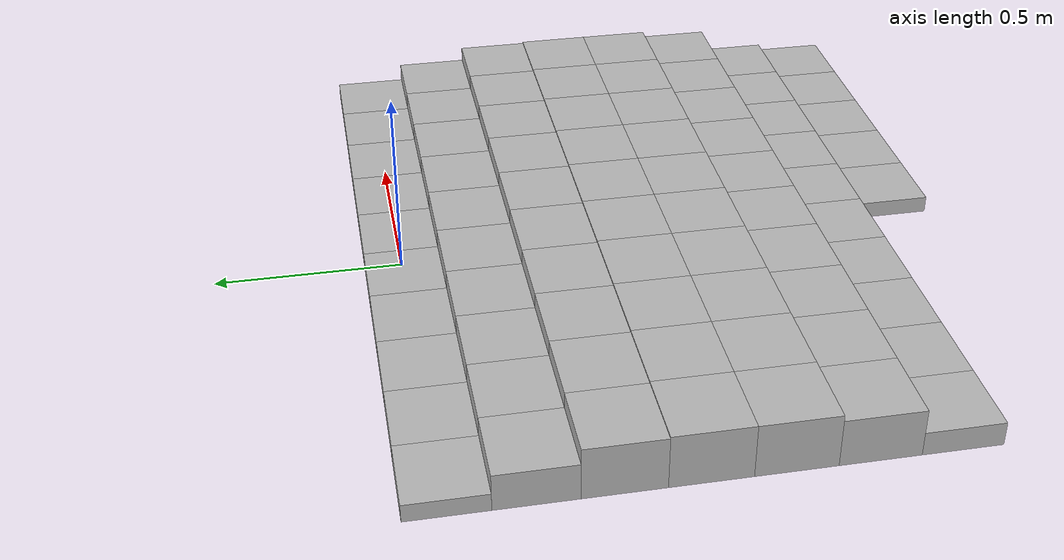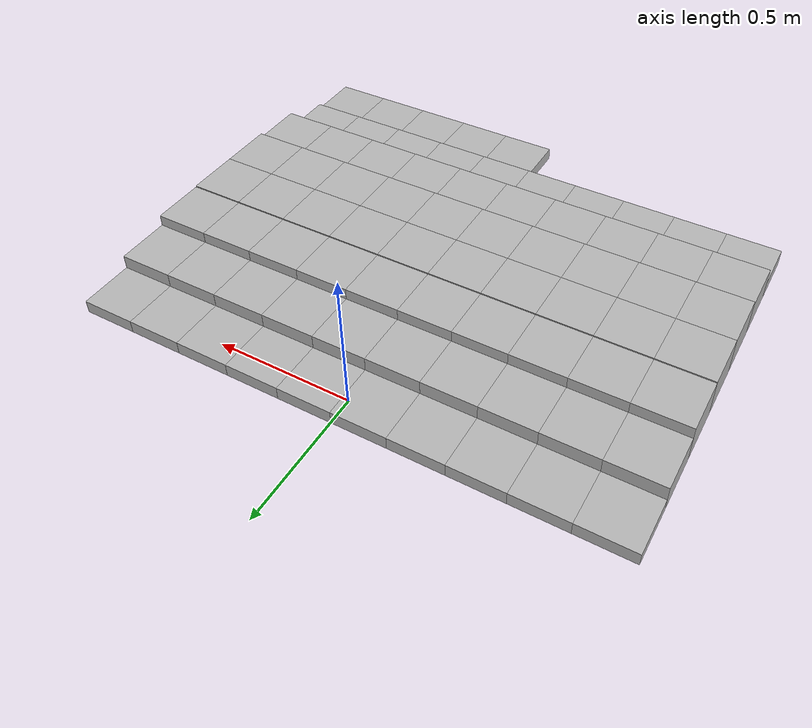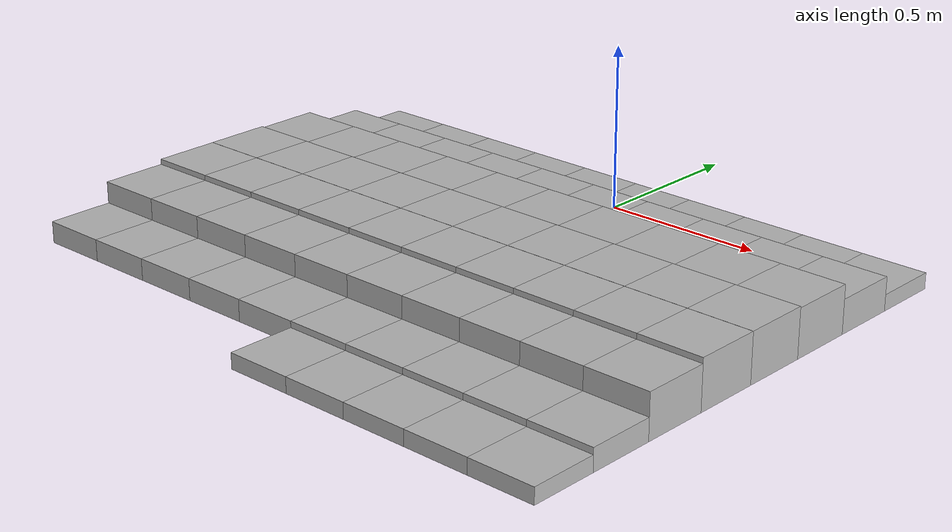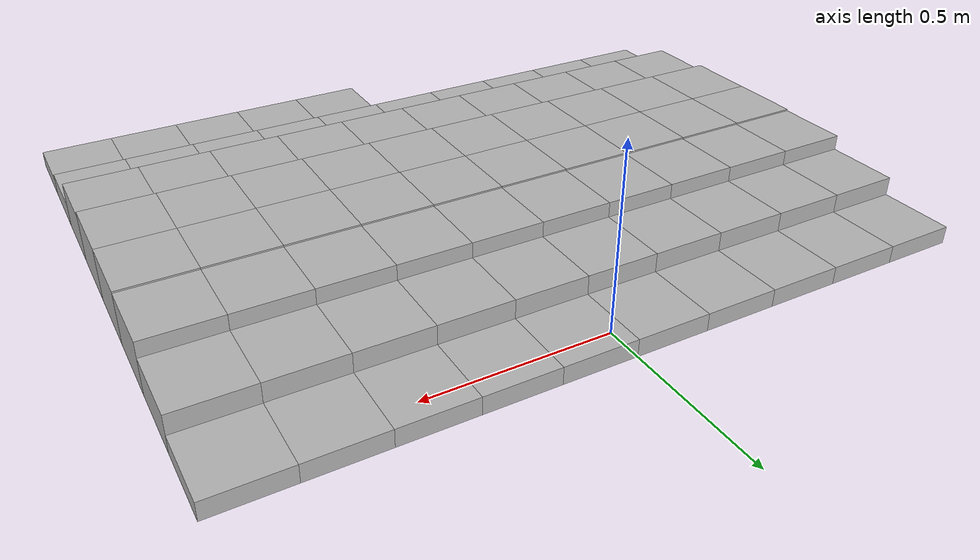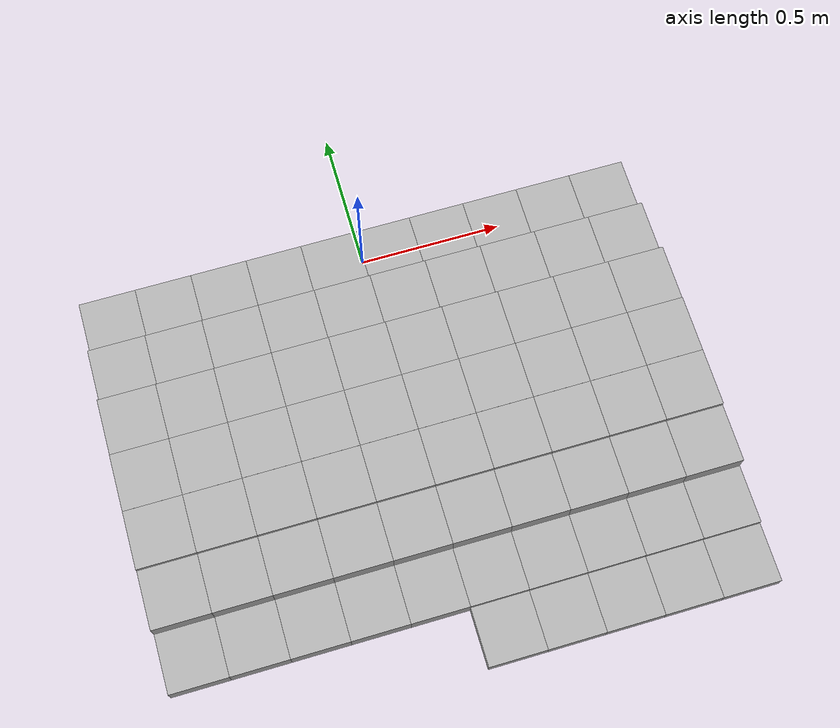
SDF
<sdf version="1.6">
 <model name="Terrain">
  <static>true</static>
  <link name="box_0_0">
   <pose>-0.9 0.0 0.0239171255452 0 0 0</pose>
   <inertial>
    <mass>1.0</mass>
    <inertia><ixx>0.0</ixx><ixy>0.0</ixy><ixz>0.0</ixz><iyy>0.0</iyy><iyz>0.0</iyz><izz>0.0</izz></inertia>
   </inertial>
   <collision name="collision"><geometry><box><size>0.2 0.2 0.0478342510903</size></box></geometry></collision>
   <visual name="visual"><geometry><box><size>0.2 0.2 0.0478342510903</size></box></geometry></visual>
  </link>
  <link name="box_0_1">
   <pose>-0.7 0.0 0.0239171255452 0 0 0</pose>
   <inertial>
    <mass>1.0</mass>
    <inertia><ixx>0.0</ixx><ixy>0.0</ixy><ixz>0.0</ixz><iyy>0.0</iyy><iyz>0.0</iyz><izz>0.0</izz></inertia>
   </inertial>
   <collision name="collision"><geometry><box><size>0.2 0.2 0.0478342510903</size></box></geometry></collision>
   <visual name="visual"><geometry><box><size>0.2 0.2 0.0478342510903</size></box></geometry></visual>
  </link>
  <link name="box_0_2">
   <pose>-0.5 0.0 0.0239171255452 0 0 0</pose>
   <inertial>
    <mass>1.0</mass>
    <inertia><ixx>0.0</ixx><ixy>0.0</ixy><ixz>0.0</ixz><iyy>0.0</iyy><iyz>0.0</iyz><izz>0.0</izz></inertia>
   </inertial>
   <collision name="collision"><geometry><box><size>0.2 0.2 0.0478342510903</size></box></geometry></collision>
   <visual name="visual"><geometry><box><size>0.2 0.2 0.0478342510903</size></box></geometry></visual>
  </link>
  <link name="box_0_3">
   <pose>-0.3 0.0 0.0239171255452 0 0 0</pose>
   <inertial>
    <mass>1.0</mass>
    <inertia><ixx>0.0</ixx><ixy>0.0</ixy><ixz>0.0</ixz><iyy>0.0</iyy><iyz>0.0</iyz><izz>0.0</izz></inertia>
   </inertial>
   <collision name="collision"><geometry><box><size>0.2 0.2 0.0478342510903</size></box></geometry></collision>
   <visual name="visual"><geometry><box><size>0.2 0.2 0.0478342510903</size></box></geometry></visual>
  </link>
  <link name="box_0_4">
   <pose>-0.1 0.0 0.0239171255452 0 0 0</pose>
   <inertial>
    <mass>1.0</mass>
    <inertia><ixx>0.0</ixx><ixy>0.0</ixy><ixz>0.0</ixz><iyy>0.0</iyy><iyz>0.0</iyz><izz>0.0</izz></inertia>
   </inertial>
   <collision name="collision"><geometry><box><size>0.2 0.2 0.0478342510903</size></box></geometry></collision>
   <visual name="visual"><geometry><box><size>0.2 0.2 0.0478342510903</size></box></geometry></visual>
  </link>
  <link name="box_0_5">
   <pose>0.1 0.0 0.0239171255452 0 0 0</pose>
   <inertial>
    <mass>1.0</mass>
    <inertia><ixx>0.0</ixx><ixy>0.0</ixy><ixz>0.0</ixz><iyy>0.0</iyy><iyz>0.0</iyz><izz>0.0</izz></inertia>
   </inertial>
   <collision name="collision"><geometry><box><size>0.2 0.2 0.0478342510903</size></box></geometry></collision>
   <visual name="visual"><geometry><box><size>0.2 0.2 0.0478342510903</size></box></geometry></visual>
  </link>
  <link name="box_0_6">
   <pose>0.3 0.0 0.0239171255452 0 0 0</pose>
   <inertial>
    <mass>1.0</mass>
    <inertia><ixx>0.0</ixx><ixy>0.0</ixy><ixz>0.0</ixz><iyy>0.0</iyy><iyz>0.0</iyz><izz>0.0</izz></inertia>
   </inertial>
   <collision name="collision"><geometry><box><size>0.2 0.2 0.0478342510903</size></box></geometry></collision>
   <visual name="visual"><geometry><box><size>0.2 0.2 0.0478342510903</size></box></geometry></visual>
  </link>
  <link name="box_0_7">
   <pose>0.5 0.0 0.0239171255452 0 0 0</pose>
   <inertial>
    <mass>1.0</mass>
    <inertia><ixx>0.0</ixx><ixy>0.0</ixy><ixz>0.0</ixz><iyy>0.0</iyy><iyz>0.0</iyz><izz>0.0</izz></inertia>
   </inertial>
   <collision name="collision"><geometry><box><size>0.2 0.2 0.0478342510903</size></box></geometry></collision>
   <visual name="visual"><geometry><box><size>0.2 0.2 0.0478342510903</size></box></geometry></visual>
  </link>
  <link name="box_0_8">
   <pose>0.7 0.0 0.0239171255452 0 0 0</pose>
   <inertial>
    <mass>1.0</mass>
    <inertia><ixx>0.0</ixx><ixy>0.0</ixy><ixz>0.0</ixz><iyy>0.0</iyy><iyz>0.0</iyz><izz>0.0</izz></inertia>
   </inertial>
   <collision name="collision"><geometry><box><size>0.2 0.2 0.0478342510903</size></box></geometry></collision>
   <visual name="visual"><geometry><box><size>0.2 0.2 0.0478342510903</size></box></geometry></visual>
  </link>
  <link name="box_0_9">
   <pose>0.9 0.0 0.0239171255452 0 0 0</pose>
   <inertial>
    <mass>1.0</mass>
    <inertia><ixx>0.0</ixx><ixy>0.0</ixy><ixz>0.0</ixz><iyy>0.0</iyy><iyz>0.0</iyz><izz>0.0</izz></inertia>
   </inertial>
   <collision name="collision"><geometry><box><size>0.2 0.2 0.0478342510903</size></box></geometry></collision>
   <visual name="visual"><geometry><box><size>0.2 0.2 0.0478342510903</size></box></geometry></visual>
  </link>
  <link name="box_1_0">
   <pose>-0.9 -0.2 0.0499296648338 0 0 0</pose>
   <inertial>
    <mass>1.0</mass>
    <inertia><ixx>0.0</ixx><ixy>0.0</ixy><ixz>0.0</ixz><iyy>0.0</iyy><iyz>0.0</iyz><izz>0.0</izz></inertia>
   </inertial>
   <collision name="collision"><geometry><box><size>0.2 0.2 0.0998593296675</size></box></geometry></collision>
   <visual name="visual"><geometry><box><size>0.2 0.2 0.0998593296675</size></box></geometry></visual>
  </link>
  <link name="box_1_1">
   <pose>-0.7 -0.2 0.0499296648338 0 0 0</pose>
   <inertial>
    <mass>1.0</mass>
    <inertia><ixx>0.0</ixx><ixy>0.0</ixy><ixz>0.0</ixz><iyy>0.0</iyy><iyz>0.0</iyz><izz>0.0</izz></inertia>
   </inertial>
   <collision name="collision"><geometry><box><size>0.2 0.2 0.0998593296675</size></box></geometry></collision>
   <visual name="visual"><geometry><box><size>0.2 0.2 0.0998593296675</size></box></geometry></visual>
  </link>
  <link name="box_1_2">
   <pose>-0.5 -0.2 0.0499296648338 0 0 0</pose>
   <inertial>
    <mass>1.0</mass>
    <inertia><ixx>0.0</ixx><ixy>0.0</ixy><ixz>0.0</ixz><iyy>0.0</iyy><iyz>0.0</iyz><izz>0.0</izz></inertia>
   </inertial>
   <collision name="collision"><geometry><box><size>0.2 0.2 0.0998593296675</size></box></geometry></collision>
   <visual name="visual"><geometry><box><size>0.2 0.2 0.0998593296675</size></box></geometry></visual>
  </link>
  <link name="box_1_3">
   <pose>-0.3 -0.2 0.0499296648338 0 0 0</pose>
   <inertial>
    <mass>1.0</mass>
    <inertia><ixx>0.0</ixx><ixy>0.0</ixy><ixz>0.0</ixz><iyy>0.0</iyy><iyz>0.0</iyz><izz>0.0</izz></inertia>
   </inertial>
   <collision name="collision"><geometry><box><size>0.2 0.2 0.0998593296675</size></box></geometry></collision>
   <visual name="visual"><geometry><box><size>0.2 0.2 0.0998593296675</size></box></geometry></visual>
  </link>
  <link name="box_1_4">
   <pose>-0.1 -0.2 0.0499296648338 0 0 0</pose>
   <inertial>
    <mass>1.0</mass>
    <inertia><ixx>0.0</ixx><ixy>0.0</ixy><ixz>0.0</ixz><iyy>0.0</iyy><iyz>0.0</iyz><izz>0.0</izz></inertia>
   </inertial>
   <collision name="collision"><geometry><box><size>0.2 0.2 0.0998593296675</size></box></geometry></collision>
   <visual name="visual"><geometry><box><size>0.2 0.2 0.0998593296675</size></box></geometry></visual>
  </link>
  <link name="box_1_5">
   <pose>0.1 -0.2 0.0499296648338 0 0 0</pose>
   <inertial>
    <mass>1.0</mass>
    <inertia><ixx>0.0</ixx><ixy>0.0</ixy><ixz>0.0</ixz><iyy>0.0</iyy><iyz>0.0</iyz><izz>0.0</izz></inertia>
   </inertial>
   <collision name="collision"><geometry><box><size>0.2 0.2 0.0998593296675</size></box></geometry></collision>
   <visual name="visual"><geometry><box><size>0.2 0.2 0.0998593296675</size></box></geometry></visual>
  </link>
  <link name="box_1_6">
   <pose>0.3 -0.2 0.0499296648338 0 0 0</pose>
   <inertial>
    <mass>1.0</mass>
    <inertia><ixx>0.0</ixx><ixy>0.0</ixy><ixz>0.0</ixz><iyy>0.0</iyy><iyz>0.0</iyz><izz>0.0</izz></inertia>
   </inertial>
   <collision name="collision"><geometry><box><size>0.2 0.2 0.0998593296675</size></box></geometry></collision>
   <visual name="visual"><geometry><box><size>0.2 0.2 0.0998593296675</size></box></geometry></visual>
  </link>
  <link name="box_1_7">
   <pose>0.5 -0.2 0.0499296648338 0 0 0</pose>
   <inertial>
    <mass>1.0</mass>
    <inertia><ixx>0.0</ixx><ixy>0.0</ixy><ixz>0.0</ixz><iyy>0.0</iyy><iyz>0.0</iyz><izz>0.0</izz></inertia>
   </inertial>
   <collision name="collision"><geometry><box><size>0.2 0.2 0.0998593296675</size></box></geometry></collision>
   <visual name="visual"><geometry><box><size>0.2 0.2 0.0998593296675</size></box></geometry></visual>
  </link>
  <link name="box_1_8">
   <pose>0.7 -0.2 0.0499296648338 0 0 0</pose>
   <inertial>
    <mass>1.0</mass>
    <inertia><ixx>0.0</ixx><ixy>0.0</ixy><ixz>0.0</ixz><iyy>0.0</iyy><iyz>0.0</iyz><izz>0.0</izz></inertia>
   </inertial>
   <collision name="collision"><geometry><box><size>0.2 0.2 0.0998593296675</size></box></geometry></collision>
   <visual name="visual"><geometry><box><size>0.2 0.2 0.0998593296675</size></box></geometry></visual>
  </link>
  <link name="box_1_9">
   <pose>0.9 -0.2 0.0499296648338 0 0 0</pose>
   <inertial>
    <mass>1.0</mass>
    <inertia><ixx>0.0</ixx><ixy>0.0</ixy><ixz>0.0</ixz><iyy>0.0</iyy><iyz>0.0</iyz><izz>0.0</izz></inertia>
   </inertial>
   <collision name="collision"><geometry><box><size>0.2 0.2 0.0998593296675</size></box></geometry></collision>
   <visual name="visual"><geometry><box><size>0.2 0.2 0.0998593296675</size></box></geometry></visual>
  </link>
  <link name="box_2_0">
   <pose>-0.9 -0.4 0.0710159760216 0 0 0</pose>
   <inertial>
    <mass>1.0</mass>
    <inertia><ixx>0.0</ixx><ixy>0.0</ixy><ixz>0.0</ixz><iyy>0.0</iyy><iyz>0.0</iyz><izz>0.0</izz></inertia>
   </inertial>
   <collision name="collision"><geometry><box><size>0.2 0.2 0.142031952043</size></box></geometry></collision>
   <visual name="visual"><geometry><box><size>0.2 0.2 0.142031952043</size></box></geometry></visual>
  </link>
  <link name="box_2_1">
   <pose>-0.7 -0.4 0.0710159760216 0 0 0</pose>
   <inertial>
    <mass>1.0</mass>
    <inertia><ixx>0.0</ixx><ixy>0.0</ixy><ixz>0.0</ixz><iyy>0.0</iyy><iyz>0.0</iyz><izz>0.0</izz></inertia>
   </inertial>
   <collision name="collision"><geometry><box><size>0.2 0.2 0.142031952043</size></box></geometry></collision>
   <visual name="visual"><geometry><box><size>0.2 0.2 0.142031952043</size></box></geometry></visual>
  </link>
  <link name="box_2_2">
   <pose>-0.5 -0.4 0.0710159760216 0 0 0</pose>
   <inertial>
    <mass>1.0</mass>
    <inertia><ixx>0.0</ixx><ixy>0.0</ixy><ixz>0.0</ixz><iyy>0.0</iyy><iyz>0.0</iyz><izz>0.0</izz></inertia>
   </inertial>
   <collision name="collision"><geometry><box><size>0.2 0.2 0.142031952043</size></box></geometry></collision>
   <visual name="visual"><geometry><box><size>0.2 0.2 0.142031952043</size></box></geometry></visual>
  </link>
  <link name="box_2_3">
   <pose>-0.3 -0.4 0.0710159760216 0 0 0</pose>
   <inertial>
    <mass>1.0</mass>
    <inertia><ixx>0.0</ixx><ixy>0.0</ixy><ixz>0.0</ixz><iyy>0.0</iyy><iyz>0.0</iyz><izz>0.0</izz></inertia>
   </inertial>
   <collision name="collision"><geometry><box><size>0.2 0.2 0.142031952043</size></box></geometry></collision>
   <visual name="visual"><geometry><box><size>0.2 0.2 0.142031952043</size></box></geometry></visual>
  </link>
  <link name="box_2_4">
   <pose>-0.1 -0.4 0.0710159760216 0 0 0</pose>
   <inertial>
    <mass>1.0</mass>
    <inertia><ixx>0.0</ixx><ixy>0.0</ixy><ixz>0.0</ixz><iyy>0.0</iyy><iyz>0.0</iyz><izz>0.0</izz></inertia>
   </inertial>
   <collision name="collision"><geometry><box><size>0.2 0.2 0.142031952043</size></box></geometry></collision>
   <visual name="visual"><geometry><box><size>0.2 0.2 0.142031952043</size></box></geometry></visual>
  </link>
  <link name="box_2_5">
   <pose>0.1 -0.4 0.0710159760216 0 0 0</pose>
   <inertial>
    <mass>1.0</mass>
    <inertia><ixx>0.0</ixx><ixy>0.0</ixy><ixz>0.0</ixz><iyy>0.0</iyy><iyz>0.0</iyz><izz>0.0</izz></inertia>
   </inertial>
   <collision name="collision"><geometry><box><size>0.2 0.2 0.142031952043</size></box></geometry></collision>
   <visual name="visual"><geometry><box><size>0.2 0.2 0.142031952043</size></box></geometry></visual>
  </link>
  <link name="box_2_6">
   <pose>0.3 -0.4 0.0710159760216 0 0 0</pose>
   <inertial>
    <mass>1.0</mass>
    <inertia><ixx>0.0</ixx><ixy>0.0</ixy><ixz>0.0</ixz><iyy>0.0</iyy><iyz>0.0</iyz><izz>0.0</izz></inertia>
   </inertial>
   <collision name="collision"><geometry><box><size>0.2 0.2 0.142031952043</size></box></geometry></collision>
   <visual name="visual"><geometry><box><size>0.2 0.2 0.142031952043</size></box></geometry></visual>
  </link>
  <link name="box_2_7">
   <pose>0.5 -0.4 0.0710159760216 0 0 0</pose>
   <inertial>
    <mass>1.0</mass>
    <inertia><ixx>0.0</ixx><ixy>0.0</ixy><ixz>0.0</ixz><iyy>0.0</iyy><iyz>0.0</iyz><izz>0.0</izz></inertia>
   </inertial>
   <collision name="collision"><geometry><box><size>0.2 0.2 0.142031952043</size></box></geometry></collision>
   <visual name="visual"><geometry><box><size>0.2 0.2 0.142031952043</size></box></geometry></visual>
  </link>
  <link name="box_2_8">
   <pose>0.7 -0.4 0.0710159760216 0 0 0</pose>
   <inertial>
    <mass>1.0</mass>
    <inertia><ixx>0.0</ixx><ixy>0.0</ixy><ixz>0.0</ixz><iyy>0.0</iyy><iyz>0.0</iyz><izz>0.0</izz></inertia>
   </inertial>
   <collision name="collision"><geometry><box><size>0.2 0.2 0.142031952043</size></box></geometry></collision>
   <visual name="visual"><geometry><box><size>0.2 0.2 0.142031952043</size></box></geometry></visual>
  </link>
  <link name="box_2_9">
   <pose>0.9 -0.4 0.0710159760216 0 0 0</pose>
   <inertial>
    <mass>1.0</mass>
    <inertia><ixx>0.0</ixx><ixy>0.0</ixy><ixz>0.0</ixz><iyy>0.0</iyy><iyz>0.0</iyz><izz>0.0</izz></inertia>
   </inertial>
   <collision name="collision"><geometry><box><size>0.2 0.2 0.142031952043</size></box></geometry></collision>
   <visual name="visual"><geometry><box><size>0.2 0.2 0.142031952043</size></box></geometry></visual>
  </link>
  <link name="box_3_0">
   <pose>-0.9 -0.6 0.0731680134057 0 0 0</pose>
   <inertial>
    <mass>1.0</mass>
    <inertia><ixx>0.0</ixx><ixy>0.0</ixy><ixz>0.0</ixz><iyy>0.0</iyy><iyz>0.0</iyz><izz>0.0</izz></inertia>
   </inertial>
   <collision name="collision"><geometry><box><size>0.2 0.2 0.146336026811</size></box></geometry></collision>
   <visual name="visual"><geometry><box><size>0.2 0.2 0.146336026811</size></box></geometry></visual>
  </link>
  <link name="box_3_1">
   <pose>-0.7 -0.6 0.0731680134057 0 0 0</pose>
   <inertial>
    <mass>1.0</mass>
    <inertia><ixx>0.0</ixx><ixy>0.0</ixy><ixz>0.0</ixz><iyy>0.0</iyy><iyz>0.0</iyz><izz>0.0</izz></inertia>
   </inertial>
   <collision name="collision"><geometry><box><size>0.2 0.2 0.146336026811</size></box></geometry></collision>
   <visual name="visual"><geometry><box><size>0.2 0.2 0.146336026811</size></box></geometry></visual>
  </link>
  <link name="box_3_2">
   <pose>-0.5 -0.6 0.0731680134057 0 0 0</pose>
   <inertial>
    <mass>1.0</mass>
    <inertia><ixx>0.0</ixx><ixy>0.0</ixy><ixz>0.0</ixz><iyy>0.0</iyy><iyz>0.0</iyz><izz>0.0</izz></inertia>
   </inertial>
   <collision name="collision"><geometry><box><size>0.2 0.2 0.146336026811</size></box></geometry></collision>
   <visual name="visual"><geometry><box><size>0.2 0.2 0.146336026811</size></box></geometry></visual>
  </link>
  <link name="box_3_3">
   <pose>-0.3 -0.6 0.0731680134057 0 0 0</pose>
   <inertial>
    <mass>1.0</mass>
    <inertia><ixx>0.0</ixx><ixy>0.0</ixy><ixz>0.0</ixz><iyy>0.0</iyy><iyz>0.0</iyz><izz>0.0</izz></inertia>
   </inertial>
   <collision name="collision"><geometry><box><size>0.2 0.2 0.146336026811</size></box></geometry></collision>
   <visual name="visual"><geometry><box><size>0.2 0.2 0.146336026811</size></box></geometry></visual>
  </link>
  <link name="box_3_4">
   <pose>-0.1 -0.6 0.0731680134057 0 0 0</pose>
   <inertial>
    <mass>1.0</mass>
    <inertia><ixx>0.0</ixx><ixy>0.0</ixy><ixz>0.0</ixz><iyy>0.0</iyy><iyz>0.0</iyz><izz>0.0</izz></inertia>
   </inertial>
   <collision name="collision"><geometry><box><size>0.2 0.2 0.146336026811</size></box></geometry></collision>
   <visual name="visual"><geometry><box><size>0.2 0.2 0.146336026811</size></box></geometry></visual>
  </link>
  <link name="box_3_5">
   <pose>0.1 -0.6 0.0731680134057 0 0 0</pose>
   <inertial>
    <mass>1.0</mass>
    <inertia><ixx>0.0</ixx><ixy>0.0</ixy><ixz>0.0</ixz><iyy>0.0</iyy><iyz>0.0</iyz><izz>0.0</izz></inertia>
   </inertial>
   <collision name="collision"><geometry><box><size>0.2 0.2 0.146336026811</size></box></geometry></collision>
   <visual name="visual"><geometry><box><size>0.2 0.2 0.146336026811</size></box></geometry></visual>
  </link>
  <link name="box_3_6">
   <pose>0.3 -0.6 0.0731680134057 0 0 0</pose>
   <inertial>
    <mass>1.0</mass>
    <inertia><ixx>0.0</ixx><ixy>0.0</ixy><ixz>0.0</ixz><iyy>0.0</iyy><iyz>0.0</iyz><izz>0.0</izz></inertia>
   </inertial>
   <collision name="collision"><geometry><box><size>0.2 0.2 0.146336026811</size></box></geometry></collision>
   <visual name="visual"><geometry><box><size>0.2 0.2 0.146336026811</size></box></geometry></visual>
  </link>
  <link name="box_3_7">
   <pose>0.5 -0.6 0.0731680134057 0 0 0</pose>
   <inertial>
    <mass>1.0</mass>
    <inertia><ixx>0.0</ixx><ixy>0.0</ixy><ixz>0.0</ixz><iyy>0.0</iyy><iyz>0.0</iyz><izz>0.0</izz></inertia>
   </inertial>
   <collision name="collision"><geometry><box><size>0.2 0.2 0.146336026811</size></box></geometry></collision>
   <visual name="visual"><geometry><box><size>0.2 0.2 0.146336026811</size></box></geometry></visual>
  </link>
  <link name="box_3_8">
   <pose>0.7 -0.6 0.0731680134057 0 0 0</pose>
   <inertial>
    <mass>1.0</mass>
    <inertia><ixx>0.0</ixx><ixy>0.0</ixy><ixz>0.0</ixz><iyy>0.0</iyy><iyz>0.0</iyz><izz>0.0</izz></inertia>
   </inertial>
   <collision name="collision"><geometry><box><size>0.2 0.2 0.146336026811</size></box></geometry></collision>
   <visual name="visual"><geometry><box><size>0.2 0.2 0.146336026811</size></box></geometry></visual>
  </link>
  <link name="box_3_9">
   <pose>0.9 -0.6 0.0731680134057 0 0 0</pose>
   <inertial>
    <mass>1.0</mass>
    <inertia><ixx>0.0</ixx><ixy>0.0</ixy><ixz>0.0</ixz><iyy>0.0</iyy><iyz>0.0</iyz><izz>0.0</izz></inertia>
   </inertial>
   <collision name="collision"><geometry><box><size>0.2 0.2 0.146336026811</size></box></geometry></collision>
   <visual name="visual"><geometry><box><size>0.2 0.2 0.146336026811</size></box></geometry></visual>
  </link>
  <link name="box_4_0">
   <pose>-0.9 -0.8 0.0730715792973 0 0 0</pose>
   <inertial>
    <mass>1.0</mass>
    <inertia><ixx>0.0</ixx><ixy>0.0</ixy><ixz>0.0</ixz><iyy>0.0</iyy><iyz>0.0</iyz><izz>0.0</izz></inertia>
   </inertial>
   <collision name="collision"><geometry><box><size>0.2 0.2 0.146143158595</size></box></geometry></collision>
   <visual name="visual"><geometry><box><size>0.2 0.2 0.146143158595</size></box></geometry></visual>
  </link>
  <link name="box_4_1">
   <pose>-0.7 -0.8 0.0730715792973 0 0 0</pose>
   <inertial>
    <mass>1.0</mass>
    <inertia><ixx>0.0</ixx><ixy>0.0</ixy><ixz>0.0</ixz><iyy>0.0</iyy><iyz>0.0</iyz><izz>0.0</izz></inertia>
   </inertial>
   <collision name="collision"><geometry><box><size>0.2 0.2 0.146143158595</size></box></geometry></collision>
   <visual name="visual"><geometry><box><size>0.2 0.2 0.146143158595</size></box></geometry></visual>
  </link>
  <link name="box_4_2">
   <pose>-0.5 -0.8 0.0730715792973 0 0 0</pose>
   <inertial>
    <mass>1.0</mass>
    <inertia><ixx>0.0</ixx><ixy>0.0</ixy><ixz>0.0</ixz><iyy>0.0</iyy><iyz>0.0</iyz><izz>0.0</izz></inertia>
   </inertial>
   <collision name="collision"><geometry><box><size>0.2 0.2 0.146143158595</size></box></geometry></collision>
   <visual name="visual"><geometry><box><size>0.2 0.2 0.146143158595</size></box></geometry></visual>
  </link>
  <link name="box_4_3">
   <pose>-0.3 -0.8 0.0730715792973 0 0 0</pose>
   <inertial>
    <mass>1.0</mass>
    <inertia><ixx>0.0</ixx><ixy>0.0</ixy><ixz>0.0</ixz><iyy>0.0</iyy><iyz>0.0</iyz><izz>0.0</izz></inertia>
   </inertial>
   <collision name="collision"><geometry><box><size>0.2 0.2 0.146143158595</size></box></geometry></collision>
   <visual name="visual"><geometry><box><size>0.2 0.2 0.146143158595</size></box></geometry></visual>
  </link>
  <link name="box_4_4">
   <pose>-0.1 -0.8 0.0730715792973 0 0 0</pose>
   <inertial>
    <mass>1.0</mass>
    <inertia><ixx>0.0</ixx><ixy>0.0</ixy><ixz>0.0</ixz><iyy>0.0</iyy><iyz>0.0</iyz><izz>0.0</izz></inertia>
   </inertial>
   <collision name="collision"><geometry><box><size>0.2 0.2 0.146143158595</size></box></geometry></collision>
   <visual name="visual"><geometry><box><size>0.2 0.2 0.146143158595</size></box></geometry></visual>
  </link>
  <link name="box_4_5">
   <pose>0.1 -0.8 0.0730715792973 0 0 0</pose>
   <inertial>
    <mass>1.0</mass>
    <inertia><ixx>0.0</ixx><ixy>0.0</ixy><ixz>0.0</ixz><iyy>0.0</iyy><iyz>0.0</iyz><izz>0.0</izz></inertia>
   </inertial>
   <collision name="collision"><geometry><box><size>0.2 0.2 0.146143158595</size></box></geometry></collision>
   <visual name="visual"><geometry><box><size>0.2 0.2 0.146143158595</size></box></geometry></visual>
  </link>
  <link name="box_4_6">
   <pose>0.3 -0.8 0.0730715792973 0 0 0</pose>
   <inertial>
    <mass>1.0</mass>
    <inertia><ixx>0.0</ixx><ixy>0.0</ixy><ixz>0.0</ixz><iyy>0.0</iyy><iyz>0.0</iyz><izz>0.0</izz></inertia>
   </inertial>
   <collision name="collision"><geometry><box><size>0.2 0.2 0.146143158595</size></box></geometry></collision>
   <visual name="visual"><geometry><box><size>0.2 0.2 0.146143158595</size></box></geometry></visual>
  </link>
  <link name="box_4_7">
   <pose>0.5 -0.8 0.0730715792973 0 0 0</pose>
   <inertial>
    <mass>1.0</mass>
    <inertia><ixx>0.0</ixx><ixy>0.0</ixy><ixz>0.0</ixz><iyy>0.0</iyy><iyz>0.0</iyz><izz>0.0</izz></inertia>
   </inertial>
   <collision name="collision"><geometry><box><size>0.2 0.2 0.146143158595</size></box></geometry></collision>
   <visual name="visual"><geometry><box><size>0.2 0.2 0.146143158595</size></box></geometry></visual>
  </link>
  <link name="box_4_8">
   <pose>0.7 -0.8 0.0730715792973 0 0 0</pose>
   <inertial>
    <mass>1.0</mass>
    <inertia><ixx>0.0</ixx><ixy>0.0</ixy><ixz>0.0</ixz><iyy>0.0</iyy><iyz>0.0</iyz><izz>0.0</izz></inertia>
   </inertial>
   <collision name="collision"><geometry><box><size>0.2 0.2 0.146143158595</size></box></geometry></collision>
   <visual name="visual"><geometry><box><size>0.2 0.2 0.146143158595</size></box></geometry></visual>
  </link>
  <link name="box_4_9">
   <pose>0.9 -0.8 0.0730715792973 0 0 0</pose>
   <inertial>
    <mass>1.0</mass>
    <inertia><ixx>0.0</ixx><ixy>0.0</ixy><ixz>0.0</ixz><iyy>0.0</iyy><iyz>0.0</iyz><izz>0.0</izz></inertia>
   </inertial>
   <collision name="collision"><geometry><box><size>0.2 0.2 0.146143158595</size></box></geometry></collision>
   <visual name="visual"><geometry><box><size>0.2 0.2 0.146143158595</size></box></geometry></visual>
  </link>
  <link name="box_5_0">
   <pose>-0.9 -1.0 0.0649420449652 0 0 0</pose>
   <inertial>
    <mass>1.0</mass>
    <inertia><ixx>0.0</ixx><ixy>0.0</ixy><ixz>0.0</ixz><iyy>0.0</iyy><iyz>0.0</iyz><izz>0.0</izz></inertia>
   </inertial>
   <collision name="collision"><geometry><box><size>0.2 0.2 0.12988408993</size></box></geometry></collision>
   <visual name="visual"><geometry><box><size>0.2 0.2 0.12988408993</size></box></geometry></visual>
  </link>
  <link name="box_5_1">
   <pose>-0.7 -1.0 0.0649420449652 0 0 0</pose>
   <inertial>
    <mass>1.0</mass>
    <inertia><ixx>0.0</ixx><ixy>0.0</ixy><ixz>0.0</ixz><iyy>0.0</iyy><iyz>0.0</iyz><izz>0.0</izz></inertia>
   </inertial>
   <collision name="collision"><geometry><box><size>0.2 0.2 0.12988408993</size></box></geometry></collision>
   <visual name="visual"><geometry><box><size>0.2 0.2 0.12988408993</size></box></geometry></visual>
  </link>
  <link name="box_5_2">
   <pose>-0.5 -1.0 0.0649420449652 0 0 0</pose>
   <inertial>
    <mass>1.0</mass>
    <inertia><ixx>0.0</ixx><ixy>0.0</ixy><ixz>0.0</ixz><iyy>0.0</iyy><iyz>0.0</iyz><izz>0.0</izz></inertia>
   </inertial>
   <collision name="collision"><geometry><box><size>0.2 0.2 0.12988408993</size></box></geometry></collision>
   <visual name="visual"><geometry><box><size>0.2 0.2 0.12988408993</size></box></geometry></visual>
  </link>
  <link name="box_5_3">
   <pose>-0.3 -1.0 0.0649420449652 0 0 0</pose>
   <inertial>
    <mass>1.0</mass>
    <inertia><ixx>0.0</ixx><ixy>0.0</ixy><ixz>0.0</ixz><iyy>0.0</iyy><iyz>0.0</iyz><izz>0.0</izz></inertia>
   </inertial>
   <collision name="collision"><geometry><box><size>0.2 0.2 0.12988408993</size></box></geometry></collision>
   <visual name="visual"><geometry><box><size>0.2 0.2 0.12988408993</size></box></geometry></visual>
  </link>
  <link name="box_5_4">
   <pose>-0.1 -1.0 0.0649420449652 0 0 0</pose>
   <inertial>
    <mass>1.0</mass>
    <inertia><ixx>0.0</ixx><ixy>0.0</ixy><ixz>0.0</ixz><iyy>0.0</iyy><iyz>0.0</iyz><izz>0.0</izz></inertia>
   </inertial>
   <collision name="collision"><geometry><box><size>0.2 0.2 0.12988408993</size></box></geometry></collision>
   <visual name="visual"><geometry><box><size>0.2 0.2 0.12988408993</size></box></geometry></visual>
  </link>
  <link name="box_5_5">
   <pose>0.1 -1.0 0.0649420449652 0 0 0</pose>
   <inertial>
    <mass>1.0</mass>
    <inertia><ixx>0.0</ixx><ixy>0.0</ixy><ixz>0.0</ixz><iyy>0.0</iyy><iyz>0.0</iyz><izz>0.0</izz></inertia>
   </inertial>
   <collision name="collision"><geometry><box><size>0.2 0.2 0.12988408993</size></box></geometry></collision>
   <visual name="visual"><geometry><box><size>0.2 0.2 0.12988408993</size></box></geometry></visual>
  </link>
  <link name="box_5_6">
   <pose>0.3 -1.0 0.0649420449652 0 0 0</pose>
   <inertial>
    <mass>1.0</mass>
    <inertia><ixx>0.0</ixx><ixy>0.0</ixy><ixz>0.0</ixz><iyy>0.0</iyy><iyz>0.0</iyz><izz>0.0</izz></inertia>
   </inertial>
   <collision name="collision"><geometry><box><size>0.2 0.2 0.12988408993</size></box></geometry></collision>
   <visual name="visual"><geometry><box><size>0.2 0.2 0.12988408993</size></box></geometry></visual>
  </link>
  <link name="box_5_7">
   <pose>0.5 -1.0 0.0649420449652 0 0 0</pose>
   <inertial>
    <mass>1.0</mass>
    <inertia><ixx>0.0</ixx><ixy>0.0</ixy><ixz>0.0</ixz><iyy>0.0</iyy><iyz>0.0</iyz><izz>0.0</izz></inertia>
   </inertial>
   <collision name="collision"><geometry><box><size>0.2 0.2 0.12988408993</size></box></geometry></collision>
   <visual name="visual"><geometry><box><size>0.2 0.2 0.12988408993</size></box></geometry></visual>
  </link>
  <link name="box_5_8">
   <pose>0.7 -1.0 0.0649420449652 0 0 0</pose>
   <inertial>
    <mass>1.0</mass>
    <inertia><ixx>0.0</ixx><ixy>0.0</ixy><ixz>0.0</ixz><iyy>0.0</iyy><iyz>0.0</iyz><izz>0.0</izz></inertia>
   </inertial>
   <collision name="collision"><geometry><box><size>0.2 0.2 0.12988408993</size></box></geometry></collision>
   <visual name="visual"><geometry><box><size>0.2 0.2 0.12988408993</size></box></geometry></visual>
  </link>
  <link name="box_5_9">
   <pose>0.9 -1.0 0.0649420449652 0 0 0</pose>
   <inertial>
    <mass>1.0</mass>
    <inertia><ixx>0.0</ixx><ixy>0.0</ixy><ixz>0.0</ixz><iyy>0.0</iyy><iyz>0.0</iyz><izz>0.0</izz></inertia>
   </inertial>
   <collision name="collision"><geometry><box><size>0.2 0.2 0.12988408993</size></box></geometry></collision>
   <visual name="visual"><geometry><box><size>0.2 0.2 0.12988408993</size></box></geometry></visual>
  </link>
  <link name="box_6_0">
   <pose>-0.9 -1.2 0.0321611927189 0 0 0</pose>
   <inertial>
    <mass>1.0</mass>
    <inertia><ixx>0.0</ixx><ixy>0.0</ixy><ixz>0.0</ixz><iyy>0.0</iyy><iyz>0.0</iyz><izz>0.0</izz></inertia>
   </inertial>
   <collision name="collision"><geometry><box><size>0.2 0.2 0.0643223854377</size></box></geometry></collision>
   <visual name="visual"><geometry><box><size>0.2 0.2 0.0643223854377</size></box></geometry></visual>
  </link>
  <link name="box_6_1">
   <pose>-0.7 -1.2 0.0321611927189 0 0 0</pose>
   <inertial>
    <mass>1.0</mass>
    <inertia><ixx>0.0</ixx><ixy>0.0</ixy><ixz>0.0</ixz><iyy>0.0</iyy><iyz>0.0</iyz><izz>0.0</izz></inertia>
   </inertial>
   <collision name="collision"><geometry><box><size>0.2 0.2 0.0643223854377</size></box></geometry></collision>
   <visual name="visual"><geometry><box><size>0.2 0.2 0.0643223854377</size></box></geometry></visual>
  </link>
  <link name="box_6_2">
   <pose>-0.5 -1.2 0.0321611927189 0 0 0</pose>
   <inertial>
    <mass>1.0</mass>
    <inertia><ixx>0.0</ixx><ixy>0.0</ixy><ixz>0.0</ixz><iyy>0.0</iyy><iyz>0.0</iyz><izz>0.0</izz></inertia>
   </inertial>
   <collision name="collision"><geometry><box><size>0.2 0.2 0.0643223854377</size></box></geometry></collision>
   <visual name="visual"><geometry><box><size>0.2 0.2 0.0643223854377</size></box></geometry></visual>
  </link>
  <link name="box_6_3">
   <pose>-0.3 -1.2 0.0321611927189 0 0 0</pose>
   <inertial>
    <mass>1.0</mass>
    <inertia><ixx>0.0</ixx><ixy>0.0</ixy><ixz>0.0</ixz><iyy>0.0</iyy><iyz>0.0</iyz><izz>0.0</izz></inertia>
   </inertial>
   <collision name="collision"><geometry><box><size>0.2 0.2 0.0643223854377</size></box></geometry></collision>
   <visual name="visual"><geometry><box><size>0.2 0.2 0.0643223854377</size></box></geometry></visual>
  </link>
  <link name="box_6_4">
   <pose>-0.1 -1.2 0.0321611927189 0 0 0</pose>
   <inertial>
    <mass>1.0</mass>
    <inertia><ixx>0.0</ixx><ixy>0.0</ixy><ixz>0.0</ixz><iyy>0.0</iyy><iyz>0.0</iyz><izz>0.0</izz></inertia>
   </inertial>
   <collision name="collision"><geometry><box><size>0.2 0.2 0.0643223854377</size></box></geometry></collision>
   <visual name="visual"><geometry><box><size>0.2 0.2 0.0643223854377</size></box></geometry></visual>
  </link>
  <link name="box_6_5">
   <pose>0.1 -1.2 0.0321611927189 0 0 0</pose>
   <inertial>
    <mass>1.0</mass>
    <inertia><ixx>0.0</ixx><ixy>0.0</ixy><ixz>0.0</ixz><iyy>0.0</iyy><iyz>0.0</iyz><izz>0.0</izz></inertia>
   </inertial>
   <collision name="collision"><geometry><box><size>0.2 0.2 0.0643223854377</size></box></geometry></collision>
   <visual name="visual"><geometry><box><size>0.2 0.2 0.0643223854377</size></box></geometry></visual>
  </link>
  <link name="box_6_6">
   <pose>0.3 -1.2 0.0321611927189 0 0 0</pose>
   <inertial>
    <mass>1.0</mass>
    <inertia><ixx>0.0</ixx><ixy>0.0</ixy><ixz>0.0</ixz><iyy>0.0</iyy><iyz>0.0</iyz><izz>0.0</izz></inertia>
   </inertial>
   <collision name="collision"><geometry><box><size>0.2 0.2 0.0643223854377</size></box></geometry></collision>
   <visual name="visual"><geometry><box><size>0.2 0.2 0.0643223854377</size></box></geometry></visual>
  </link>
  <link name="box_6_7">
   <pose>0.5 -1.2 0.0321611927189 0 0 0</pose>
   <inertial>
    <mass>1.0</mass>
    <inertia><ixx>0.0</ixx><ixy>0.0</ixy><ixz>0.0</ixz><iyy>0.0</iyy><iyz>0.0</iyz><izz>0.0</izz></inertia>
   </inertial>
   <collision name="collision"><geometry><box><size>0.2 0.2 0.0643223854377</size></box></geometry></collision>
   <visual name="visual"><geometry><box><size>0.2 0.2 0.0643223854377</size></box></geometry></visual>
  </link>
  <link name="box_6_8">
   <pose>0.7 -1.2 0.0321611927189 0 0 0</pose>
   <inertial>
    <mass>1.0</mass>
    <inertia><ixx>0.0</ixx><ixy>0.0</ixy><ixz>0.0</ixz><iyy>0.0</iyy><iyz>0.0</iyz><izz>0.0</izz></inertia>
   </inertial>
   <collision name="collision"><geometry><box><size>0.2 0.2 0.0643223854377</size></box></geometry></collision>
   <visual name="visual"><geometry><box><size>0.2 0.2 0.0643223854377</size></box></geometry></visual>
  </link>
  <link name="box_6_9">
   <pose>0.9 -1.2 0.0321611927189 0 0 0</pose>
   <inertial>
    <mass>1.0</mass>
    <inertia><ixx>0.0</ixx><ixy>0.0</ixy><ixz>0.0</ixz><iyy>0.0</iyy><iyz>0.0</iyz><izz>0.0</izz></inertia>
   </inertial>
   <collision name="collision"><geometry><box><size>0.2 0.2 0.0643223854377</size></box></geometry></collision>
   <visual name="visual"><geometry><box><size>0.2 0.2 0.0643223854377</size></box></geometry></visual>
  </link>
  <link name="box_7_5">
   <pose>0.1 -1.4 0.0229381124884 0 0 0</pose>
   <inertial>
    <mass>1.0</mass>
    <inertia><ixx>0.0</ixx><ixy>0.0</ixy><ixz>0.0</ixz><iyy>0.0</iyy><iyz>0.0</iyz><izz>0.0</izz></inertia>
   </inertial>
   <collision name="collision"><geometry><box><size>0.2 0.2 0.0458762249769</size></box></geometry></collision>
   <visual name="visual"><geometry><box><size>0.2 0.2 0.0458762249769</size></box></geometry></visual>
  </link>
  <link name="box_7_6">
   <pose>0.3 -1.4 0.0229381124884 0 0 0</pose>
   <inertial>
    <mass>1.0</mass>
    <inertia><ixx>0.0</ixx><ixy>0.0</ixy><ixz>0.0</ixz><iyy>0.0</iyy><iyz>0.0</iyz><izz>0.0</izz></inertia>
   </inertial>
   <collision name="collision"><geometry><box><size>0.2 0.2 0.0458762249769</size></box></geometry></collision>
   <visual name="visual"><geometry><box><size>0.2 0.2 0.0458762249769</size></box></geometry></visual>
  </link>
  <link name="box_7_7">
   <pose>0.5 -1.4 0.0229381124884 0 0 0</pose>
   <inertial>
    <mass>1.0</mass>
    <inertia><ixx>0.0</ixx><ixy>0.0</ixy><ixz>0.0</ixz><iyy>0.0</iyy><iyz>0.0</iyz><izz>0.0</izz></inertia>
   </inertial>
   <collision name="collision"><geometry><box><size>0.2 0.2 0.0458762249769</size></box></geometry></collision>
   <visual name="visual"><geometry><box><size>0.2 0.2 0.0458762249769</size></box></geometry></visual>
  </link>
  <link name="box_7_8">
   <pose>0.7 -1.4 0.0229381124884 0 0 0</pose>
   <inertial>
    <mass>1.0</mass>
    <inertia><ixx>0.0</ixx><ixy>0.0</ixy><ixz>0.0</ixz><iyy>0.0</iyy><iyz>0.0</iyz><izz>0.0</izz></inertia>
   </inertial>
   <collision name="collision"><geometry><box><size>0.2 0.2 0.0458762249769</size></box></geometry></collision>
   <visual name="visual"><geometry><box><size>0.2 0.2 0.0458762249769</size></box></geometry></visual>
  </link>
  <link name="box_7_9">
   <pose>0.9 -1.4 0.0229381124884 0 0 0</pose>
   <inertial>
    <mass>1.0</mass>
    <inertia><ixx>0.0</ixx><ixy>0.0</ixy><ixz>0.0</ixz><iyy>0.0</iyy><iyz>0.0</iyz><izz>0.0</izz></inertia>
   </inertial>
   <collision name="collision"><geometry><box><size>0.2 0.2 0.0458762249769</size></box></geometry></collision>
   <visual name="visual"><geometry><box><size>0.2 0.2 0.0458762249769</size></box></geometry></visual>
  </link>
 </model>
</sdf>
